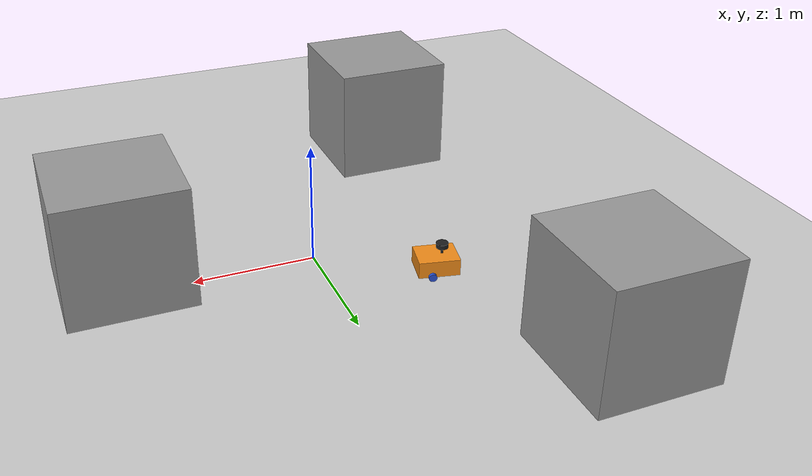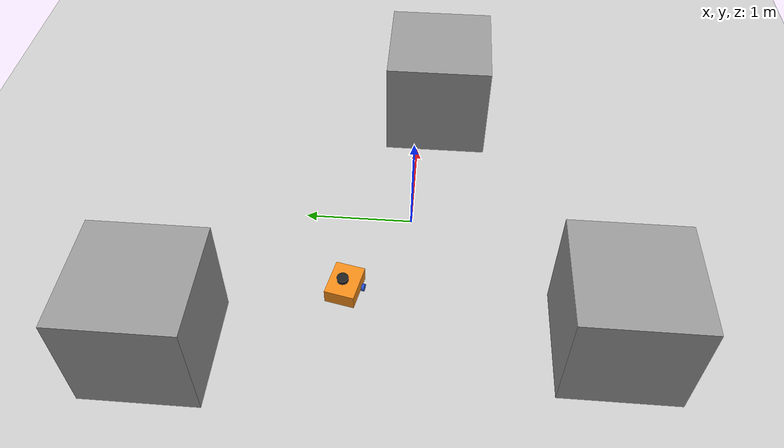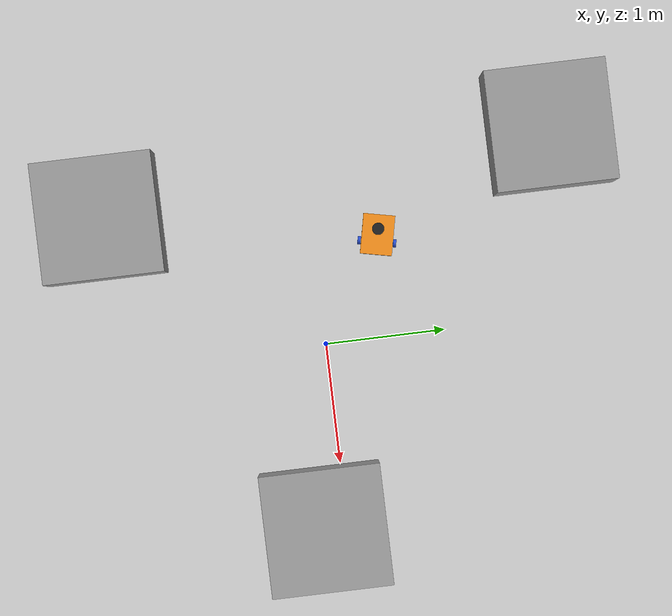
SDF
<sdf version="1.7">
 <world name="default">
  <light name="sun" type="directional">
   <pose>0 0 10 0 -0 0</pose>
   <diffuse>0.8 0.8 0.8 1</diffuse>
   <specular>0.2 0.2 0.2 1</specular>
   <attenuation>
    <range>1000</range>
    <constant>0.9</constant>
    <linear>0.01</linear>
    <quadratic>0.001</quadratic>
   </attenuation>
   <direction>-0.5 0.1 -0.9</direction>
   <spot><inner_angle>0</inner_angle><outer_angle>0</outer_angle><falloff>0</falloff></spot>
  </light>
  <model name="ground_plane">
   <static>1</static>
   <link name="link">
    <collision name="collision">
     <geometry><plane><normal>0 0 1</normal><size>100 100</size></plane></geometry>
     <surface><friction><ode><mu>100</mu><mu2>50</mu2></ode></friction></surface>
    </collision>
    <visual name="visual">
     <cast_shadows>0</cast_shadows>
     <geometry><plane><normal>0 0 1</normal><size>100 100</size></plane></geometry>
     <material>
      <script><uri>file://media/materials/scripts/gazebo.material</uri><name>Gazebo/Grey</name></script>
     </material>
    </visual>
   </link>
  </model>
  <gravity>0 0 -9.8</gravity>
  <magnetic_field>6e-06 2.3e-05 -4.2e-05</magnetic_field>
  <atmosphere type="adiabatic"/>
  <physics type="ode">
   <max_step_size>0.001</max_step_size>
   <real_time_factor>1</real_time_factor>
   <real_time_update_rate>1000</real_time_update_rate>
  </physics>
  <scene><ambient>0.4 0.4 0.4 1</ambient><background>0.7 0.7 0.7 1</background><shadows>1</shadows></scene>
  <spherical_coordinates>
   <surface_model>EARTH_WGS84</surface_model>
   <latitude_deg>0</latitude_deg>
   <longitude_deg>0</longitude_deg>
   <elevation>0</elevation>
   <heading_deg>0</heading_deg>
  </spherical_coordinates>
  <model name="unit_box">
   <pose>1.51272 -0.181423 0.499995 1e-05 -0 0</pose>
   <link name="link">
    <inertial>
     <mass>1</mass>
     <inertia>
      <ixx>0.166667</ixx>
      <ixy>0</ixy>
      <ixz>0</ixz>
      <iyy>0.166667</iyy>
      <iyz>0</iyz>
      <izz>0.166667</izz>
     </inertia>
    </inertial>
    <collision name="collision"><geometry><box><size>1 1 1</size></box></geometry></collision>
    <visual name="visual">
     <geometry><box><size>1 1 1</size></box></geometry>
     <material>
      <script><name>Gazebo/Grey</name><uri>file://media/materials/scripts/gazebo.material</uri></script>
     </material>
    </visual>
   </link>
  </model>
  <audio><device>default</device></audio>
  <model name="diff_bot">
   <link name="base_link">
    <inertial>
     <pose>-0.067475 0 0.081098 0 -0 0</pose>
     <mass>0.61</mass>
     <inertia>
      <ixx>0.00561003</ixx>
      <ixy>0</ixy>
      <ixz>0.000453811</ixz>
      <iyy>0.00760348</iyy>
      <iyz>0</iyz>
      <izz>0.00797093</izz>
     </inertia>
    </inertial>
    <collision name="base_link_fixed_joint_lump__chassis_collision">
     <pose>-0.0585 0 0.059 0 -0 0</pose>
     <geometry><box><size>0.335 0.265 0.138</size></box></geometry>
    </collision>
    <collision name="base_link_fixed_joint_lump__caster_wheel_collision_1">
     <pose>-0.151 0 -0.023 0 -0 0</pose>
     <geometry><sphere><radius>0.01</radius></sphere></geometry>
     <surface><friction><ode><mu>0.001</mu><mu2>0.001</mu2></ode></friction></surface>
    </collision>
    <collision name="base_link_fixed_joint_lump__lidar_link_collision_2">
     <pose>-0.104 0 0.202 0 -0 0</pose>
     <geometry><cylinder><length>0.04</length><radius>0.05</radius></cylinder></geometry>
    </collision>
    <visual name="base_link_fixed_joint_lump__chassis_visual">
     <pose>-0.0585 0 0.059 0 -0 0</pose>
     <geometry><box><size>0.335 0.265 0.138</size></box></geometry>
     <material>
      <script><name>Gazebo/Orange</name><uri>file://media/materials/scripts/gazebo.material</uri></script>
     </material>
    </visual>
    <visual name="base_link_fixed_joint_lump__caster_wheel_visual_1">
     <pose>-0.151 0 -0.023 0 -0 0</pose>
     <geometry><sphere><radius>0.01</radius></sphere></geometry>
     <material>
      <script><name>Gazebo/White</name><uri>file://media/materials/scripts/gazebo.material</uri></script>
     </material>
    </visual>
    <visual name="base_link_fixed_joint_lump__lidar_link_visual_2">
     <pose>-0.104 0 0.202 0 -0 0</pose>
     <geometry><cylinder><length>0.04</length><radius>0.05</radius></cylinder></geometry>
     <material>
      <script><name>Gazebo/Black</name><uri>file://media/materials/scripts/gazebo.material</uri></script>
     </material>
    </visual>
    <visual name="base_link_fixed_joint_lump__lidar_link_visual_3">
     <pose>-0.104 0 0.152 0 -0 0</pose>
     <geometry><cylinder><length>0.1</length><radius>0.01</radius></cylinder></geometry>
     <material>
      <script><name>Gazebo/Black</name><uri>file://media/materials/scripts/gazebo.material</uri></script>
     </material>
    </visual>
    <sensor name="laser" type="ray">
     <visualize>0</visualize>
     <update_rate>10</update_rate>
     <ray>
      <scan>
       <horizontal>
        <samples>360</samples>
        <min_angle>-3.14</min_angle>
        <max_angle>3.14</max_angle>
        <resolution>1</resolution>
       </horizontal>
       <vertical><samples>1</samples><min_angle>0</min_angle><max_angle>0</max_angle></vertical>
      </scan>
      <range><min>0.3</min><max>12</max></range>
     </ray>
     <plugin name="laser_controller" filename="libgazebo_ros_ray_sensor.so">
      <ros><argument>~/out:=scan</argument></ros>
      <output_type>sensor_msgs/LaserScan</output_type>
      <frame_name>lidar_link</frame_name>
     </plugin>
     <pose>-0.104 0 0.202 0 -0 0</pose>
    </sensor>
   </link>
   <joint name="left_wheel_joint" type="revolute">
    <pose relative_to="base_link">0 0.1485 0 -1.5708 0 0</pose>
    <parent>base_link</parent>
    <child>left_wheel</child>
    <axis>
     <xyz>0 0 1</xyz>
     <limit><lower>-1e+16</lower><upper>1e+16</upper></limit>
     <dynamics><spring_reference>0</spring_reference><spring_stiffness>0</spring_stiffness></dynamics>
    </axis>
   </joint>
   <link name="left_wheel">
    <pose relative_to="left_wheel_joint">0 0 0 0 -0 0</pose>
    <inertial>
     <mass>0.05</mass>
     <inertia>
      <ixx>1.64292e-05</ixx>
      <ixy>0</ixy>
      <ixz>0</ixz>
      <iyy>1.64292e-05</iyy>
      <iyz>0</iyz>
      <izz>2.7225e-05</izz>
     </inertia>
    </inertial>
    <collision name="left_wheel_collision">
     <geometry><sphere><radius>0.033</radius></sphere></geometry>
    </collision>
    <visual name="left_wheel_visual">
     <geometry><cylinder><length>0.026</length><radius>0.033</radius></cylinder></geometry>
     <material>
      <script><name>Gazebo/Blue</name><uri>file://media/materials/scripts/gazebo.material</uri></script>
     </material>
    </visual>
   </link>
   <joint name="right_wheel_joint" type="revolute">
    <pose relative_to="base_link">0 -0.1485 0 1.5708 -0 0</pose>
    <parent>base_link</parent>
    <child>right_wheel</child>
    <axis>
     <xyz>0 0 -1</xyz>
     <limit><lower>-1e+16</lower><upper>1e+16</upper></limit>
     <dynamics><spring_reference>0</spring_reference><spring_stiffness>0</spring_stiffness></dynamics>
    </axis>
   </joint>
   <link name="right_wheel">
    <pose relative_to="right_wheel_joint">0 0 0 0 -0 0</pose>
    <inertial>
     <mass>0.05</mass>
     <inertia>
      <ixx>1.64292e-05</ixx>
      <ixy>0</ixy>
      <ixz>0</ixz>
      <iyy>1.64292e-05</iyy>
      <iyz>0</iyz>
      <izz>2.7225e-05</izz>
     </inertia>
    </inertial>
    <collision name="right_wheel_collision">
     <geometry><sphere><radius>0.033</radius></sphere></geometry>
    </collision>
    <visual name="right_wheel_visual">
     <geometry><cylinder><length>0.026</length><radius>0.033</radius></cylinder></geometry>
     <material>
      <script><name>Gazebo/Blue</name><uri>file://media/materials/scripts/gazebo.material</uri></script>
     </material>
    </visual>
   </link>
   <static>0</static>
   <plugin name="gazebo_ros2_control" filename="libgazebo_ros2_control.so">
    <parameters>/home/future/Documents/Robot/nav_ws/install/diff_control/share/diff_control/config/diffbot_controllers.yaml</parameters>
    <parameters>/home/future/Documents/Robot/nav_ws/install/diff_control/share/diff_control/config/gazebo_use_sim_control.yaml</parameters>
   </plugin>
   <pose>-0.794425 0.525446 0.032997 1.6e-05 1.8e-05 -0.209295</pose>
  </model>
  <model name="unit_box_0">
   <pose>-1.2478 -1.73429 0.499995 -1e-05 -0 0</pose>
   <link name="link">
    <inertial>
     <mass>1</mass>
     <inertia>
      <ixx>0.166667</ixx>
      <ixy>0</ixy>
      <ixz>0</ixz>
      <iyy>0.166667</iyy>
      <iyz>0</iyz>
      <izz>0.166667</izz>
     </inertia>
    </inertial>
    <collision name="collision"><geometry><box><size>1 1 1</size></box></geometry></collision>
    <visual name="visual">
     <geometry><box><size>1 1 1</size></box></geometry>
     <material>
      <script><name>Gazebo/Grey</name><uri>file://media/materials/scripts/gazebo.material</uri></script>
     </material>
    </visual>
   </link>
  </model>
  <model name="unit_box_1">
   <pose>-1.55489 2.03712 0.5 0 -0 0</pose>
   <link name="link">
    <inertial>
     <mass>1</mass>
     <inertia>
      <ixx>0.166667</ixx>
      <ixy>0</ixy>
      <ixz>0</ixz>
      <iyy>0.166667</iyy>
      <iyz>0</iyz>
      <izz>0.166667</izz>
     </inertia>
    </inertial>
    <collision name="collision"><geometry><box><size>1 1 1</size></box></geometry></collision>
    <visual name="visual">
     <geometry><box><size>1 1 1</size></box></geometry>
     <material>
      <script><name>Gazebo/Grey</name><uri>file://media/materials/scripts/gazebo.material</uri></script>
     </material>
    </visual>
   </link>
  </model>
 </world>
</sdf>
